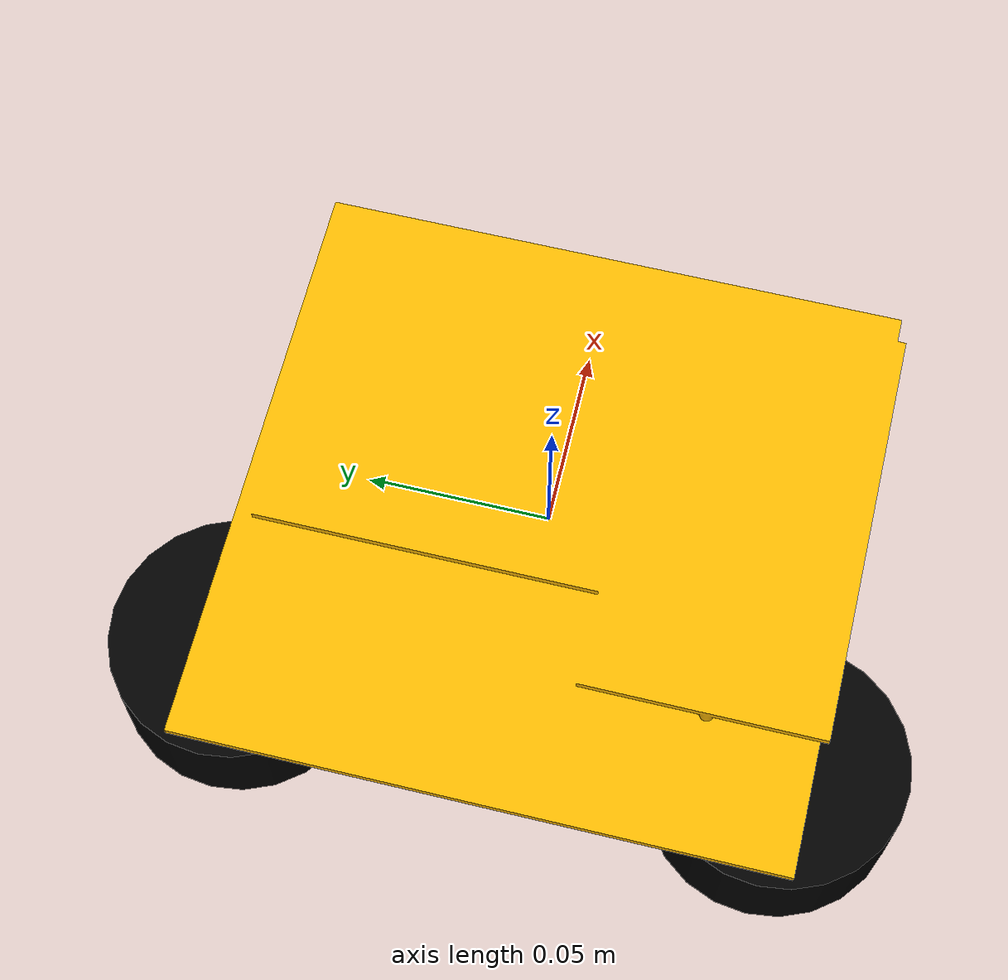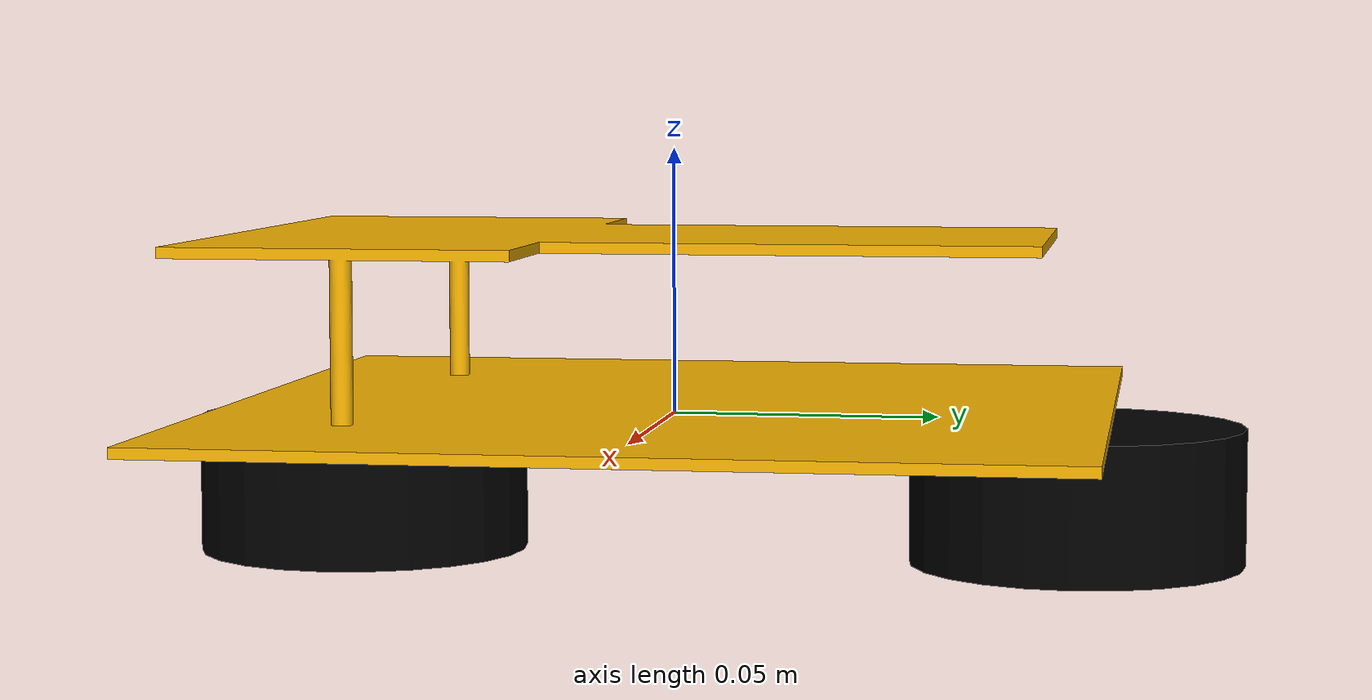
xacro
<?xml version='1.0'?>

<robot name="morla" xmlns:xacro="http://www.ros.org/wiki/xacro">

  <xacro:include filename="$(find morla)/urdf/morla.gazebo" />

  <material name="black">
    <color rgba="0 0 0 1"/>
  </material>

  <link name='robot_footprint'> </link>

  <joint name="robot_footprint_joint" type="fixed">
    <origin xyz="0 0 0" rpy="0 0 0" />
    <parent link="robot_footprint"/>
    <child link="morla_chassis" />
  </joint>

  <link name='morla_chassis'>
    <pose>0 0 0 0 0 0</pose>

    <inertial>
      <mass value="2"/>
      <origin xyz="0 0 0" rpy=" 0 0 0"/>
      <inertia
          ixx="0.004889713" ixy="0" ixz="0"
          iyy="0.004008093" iyz="0.000240565"
          izz="0.008040018"
      />
    </inertial>

    <collision name='chassis_collision'>
      <origin xyz="0 0 0" rpy=" 0 0 0"/>
      <geometry>
        <mesh filename="package://morla/meshes/morlaChassis.dae"/>
      </geometry>
    </collision>

    <visual name='chassis_visual'>
      <origin xyz="0 0 0" rpy=" 0 0 0"/>
      <geometry>
        <mesh filename="package://morla/meshes/morlaChassis.dae"/>
      </geometry>
    </visual>
  </link>

  <link name='left_wheel'>
    <pose>0 0 0 0 0 0</pose>

    <inertial>
      <mass value="5.35"/>
      <origin xyz="0 0 0" rpy="0 0 0"/>
      <inertia
          ixx="0.000225" ixy="0" ixz="0"
          iyy="0.000225" iyz="0"
          izz="0.0004375"
      />
    </inertial>

    <collision name='left_wheel_collision'>
      <origin xyz="0 0 0" rpy="0 0 0"/>
      <geometry>
        <cylinder radius="0.034" length="0.028"/>
      </geometry>
    </collision>

    <visual name='left_wheel_visual'>
      <origin xyz="0 0 0" rpy="0 0 0"/>
      <geometry>
        <cylinder radius="0.034" length="0.028"/>
      </geometry>
      <material name="black"/>
    </visual>
  </link>

  <link name='right_wheel'>
    <pose>0 0 0 0 0 0</pose>

    <inertial>
      <mass value="5.35"/>
      <origin xyz="0 0 0" rpy="0 0 0"/>
      <inertia
          ixx="0.000225" ixy="0" ixz="0"
          iyy="0.000225" iyz="0"
          izz="0.0004375"
      />
    </inertial>

    <collision name='right_wheel_collision'>
      <origin xyz="0 0 0" rpy="0 0 0"/>
      <geometry>
        <cylinder radius="0.034" length="0.028"/>
      </geometry>
    </collision>

    <visual name='right_wheel_visual'>
      <origin xyz="0 0 0" rpy="0 0 0"/>
      <geometry>
        <cylinder radius="0.034" length="0.028"/>
      </geometry>
      <material name="black"/>
    </visual>
  </link>
<!-- links for sensors -->

  <!-- To control the face of camera link which will be used as camera, we make an invisible link -->
  <joint type="continuous" name="left_wheel_hinge">
    <origin xyz="-0.05 -0.0742145 -0.021" rpy=" 0 0 0"/>
    <child link="left_wheel"/>
    <parent link="morla_chassis"/>
    <axis xyz="0 0 1" rpy="0 0 0"/>
    <limit effort="10000" velocity="1000"/>
    <dynamics damping="1.0" friction="1.0"/>
  </joint>

  <joint type="continuous" name="right_wheel_hinge">
    <origin xyz="-0.05 0.0742145 -0.021" rpy=" 0 0 0"/>
    <child link="right_wheel"/>
    <parent link="morla_chassis"/>
    <axis xyz="0 0 1" rpy="0 0 0"/>
    <limit effort="10000" velocity="1000"/>
    <dynamics damping="1.0" friction="1.0"/>
  </joint>
  <gazebo reference="left_wheel">
    <material>Gazebo/Black</material>
  </gazebo>

  <gazebo reference="right_wheel">
    <material>Gazebo/Black</material>
  </gazebo>

  <gazebo reference="omni_wheel">
    <material>Gazebo/Black</material>
  </gazebo>

</robot>
